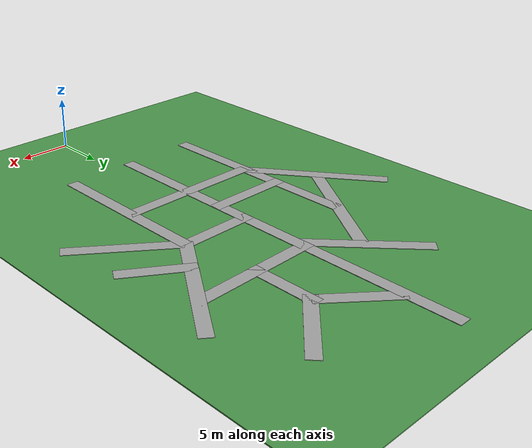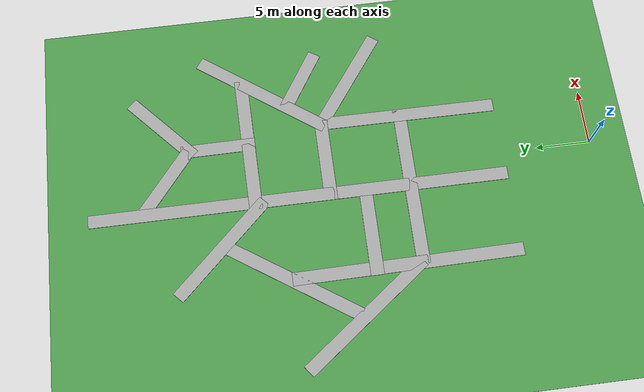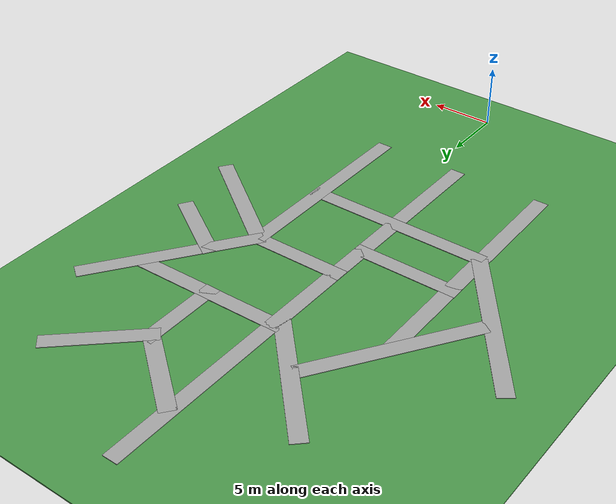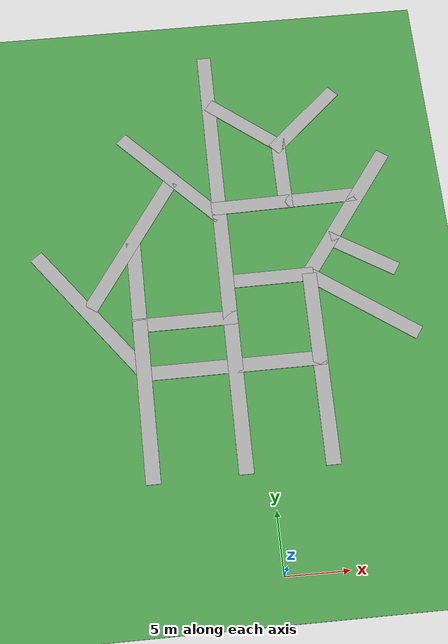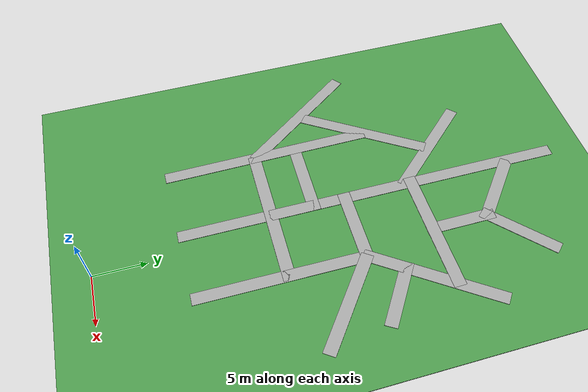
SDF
<?xml version="1.0" ?>
<sdf version="1.8">
  <world name="campus_sidewalk">

    <!-- 1. SIMULATION PHYSICS & SYSTEM PLUGINS     -->
    <physics name="1ms" type="ignored">
      <max_step_size>0.001</max_step_size>
      <real_time_factor>1.0</real_time_factor>
    </physics>

    <plugin filename="ignition-gazebo-physics-system" name="ignition::gazebo::systems::Physics"/>
    <plugin filename="ignition-gazebo-user-commands-system" name="ignition::gazebo::systems::UserCommands"/>
    <plugin filename="ignition-gazebo-scene-broadcaster-system" name="ignition::gazebo::systems::SceneBroadcaster"/>
    <plugin filename="ignition-gazebo-sensors-system" name="ignition::gazebo::systems::Sensors">
      <render_engine>ogre2</render_engine>
    </plugin>

    <!-- 2. LIGHTING & SUN                          -->
    <light type="directional" name="sun">
      <cast_shadows>true</cast_shadows>
      <pose>0 0 10 0 0 0</pose>
      <diffuse>0.8 0.8 0.8 1</diffuse>
      <specular>0.2 0.2 0.2 1</specular>
      <attenuation>
        <range>1000</range>
        <constant>0.9</constant>
        <linear>0.01</linear>
        <quadratic>0.001</quadratic>
      </attenuation>
      <direction>-0.5 0.1 -0.9</direction>
    </light>

    <!-- 3. GRASS MODEL                             -->
    <model name="grass_network">
      <static>true</static>

      <link name="grass_patch_0">
        <pose>-23.0000 1.0000 0.0 0 0 0</pose>
        <collision name="col">
          <pose>0 0 -0.0500 0 0 0</pose>
          <geometry>
            <box><size>220.0000 144.0000 0.1000</size></box>
          </geometry>
        </collision>
        <visual name="vis">
          <pose>0 0 -0.0500 0 0 0</pose>
          <geometry>
            <box><size>220.0000 144.0000 0.1000</size></box>
          </geometry>
          <material>
            <ambient>0.3 0.6 0.3 1</ambient>
            <diffuse>0.3 0.6 0.3 1</diffuse>
          </material>
          <plugin filename="ignition-gazebo-label-system" name="ignition::gazebo::systems::Label">
            <label>2</label> <!-- 2 = Grass -->
          </plugin>
        </visual>
      </link>
    </model>

    <!-- 4. SIDEWALK NETWORK                        -->
    <model name="sidewalk_network">
      <static>true</static>

      <!-- Segment 0: Length 38.00m, Width 1.20m, Height 0.05m -->
      <link name="segment_0">
        <pose>-2.0000 46.0000 0.0 0 0 -1.5708</pose>
        <collision name="col">
          <pose>19.0000 0 0.0250 0 0 0</pose>
          <geometry>
            <box><size>38.0000 1.2000 0.0500</size></box>
          </geometry>
        </collision>
        <visual name="vis">
          <pose>19.0000 0 0.0250 0 0 0</pose>
          <geometry>
            <box><size>38.0000 1.2000 0.0500</size></box>
          </geometry>
          <material>
            <ambient>0.65 0.65 0.65 1</ambient>
            <diffuse>0.65 0.65 0.65 1</diffuse>
          </material>
          <plugin filename="ignition-gazebo-label-system" name="ignition::gazebo::systems::Label">
            <label>1</label> <!-- 1 = Sidewalk -->
          </plugin>
        </visual>
      </link>

      <!-- Segment 1: Length 14.80m, Width 1.20m, Height 0.05m -->
      <link name="segment_1">
        <pose>-9.4733 16.8634 0.0 0 0 0.0049</pose>
        <collision name="col">
          <pose>7.3986 0 0.0250 0 0 0</pose>
          <geometry>
            <box><size>14.7973 1.2000 0.0500</size></box>
          </geometry>
        </collision>
        <visual name="vis">
          <pose>7.3986 0 0.0250 0 0 0</pose>
          <geometry>
            <box><size>14.7973 1.2000 0.0500</size></box>
          </geometry>
          <material>
            <ambient>0.65 0.65 0.65 1</ambient>
            <diffuse>0.65 0.65 0.65 1</diffuse>
          </material>
          <plugin filename="ignition-gazebo-label-system" name="ignition::gazebo::systems::Label">
            <label>1</label> <!-- 1 = Sidewalk -->
          </plugin>
        </visual>
      </link>

      <!-- Segment 2: Length 20.59m, Width 1.20m, Height 0.05m -->
      <link name="segment_2">
        <pose>-9.4583 28.4686 0.0 0 0 -1.5595</pose>
        <collision name="col">
          <pose>10.2934 0 0.0250 0 0 0</pose>
          <geometry>
            <box><size>20.5869 1.2000 0.0500</size></box>
          </geometry>
        </collision>
        <visual name="vis">
          <pose>10.2934 0 0.0250 0 0 0</pose>
          <geometry>
            <box><size>20.5869 1.2000 0.0500</size></box>
          </geometry>
          <material>
            <ambient>0.65 0.65 0.65 1</ambient>
            <diffuse>0.65 0.65 0.65 1</diffuse>
          </material>
          <plugin filename="ignition-gazebo-label-system" name="ignition::gazebo::systems::Label">
            <label>1</label> <!-- 1 = Sidewalk -->
          </plugin>
        </visual>
      </link>

      <!-- Segment 3: Length 13.27m, Width 1.20m, Height 0.05m -->
      <link name="segment_3">
        <pose>-5.8855 33.8859 0.0 0 0 -2.1614</pose>
        <collision name="col">
          <pose>6.6360 0 0.0250 0 0 0</pose>
          <geometry>
            <box><size>13.2720 1.2000 0.0500</size></box>
          </geometry>
        </collision>
        <visual name="vis">
          <pose>6.6360 0 0.0250 0 0 0</pose>
          <geometry>
            <box><size>13.2720 1.2000 0.0500</size></box>
          </geometry>
          <material>
            <ambient>0.65 0.65 0.65 1</ambient>
            <diffuse>0.65 0.65 0.65 1</diffuse>
          </material>
          <plugin filename="ignition-gazebo-label-system" name="ignition::gazebo::systems::Label">
            <label>1</label> <!-- 1 = Sidewalk -->
          </plugin>
        </visual>
      </link>

      <!-- Segment 4: Length 11.48m, Width 1.20m, Height 0.05m -->
      <link name="segment_4">
        <pose>-9.8744 38.4734 0.0 0 0 -0.8103</pose>
        <collision name="col">
          <pose>5.7421 0 0.0250 0 0 0</pose>
          <geometry>
            <box><size>11.4843 1.2000 0.0500</size></box>
          </geometry>
        </collision>
        <visual name="vis">
          <pose>5.7421 0 0.0250 0 0 0</pose>
          <geometry>
            <box><size>11.4843 1.2000 0.0500</size></box>
          </geometry>
          <material>
            <ambient>0.65 0.65 0.65 1</ambient>
            <diffuse>0.65 0.65 0.65 1</diffuse>
          </material>
          <plugin filename="ignition-gazebo-label-system" name="ignition::gazebo::systems::Label">
            <label>1</label> <!-- 1 = Sidewalk -->
          </plugin>
        </visual>
      </link>

      <!-- Segment 5: Length 7.81m, Width 1.20m, Height 0.05m -->
      <link name="segment_5">
        <pose>5.2231 24.2755 0.0 0 0 -3.1324</pose>
        <collision name="col">
          <pose>3.9038 0 0.0250 0 0 0</pose>
          <geometry>
            <box><size>7.8076 1.2000 0.0500</size></box>
          </geometry>
        </collision>
        <visual name="vis">
          <pose>3.9038 0 0.0250 0 0 0</pose>
          <geometry>
            <box><size>7.8076 1.2000 0.0500</size></box>
          </geometry>
          <material>
            <ambient>0.65 0.65 0.65 1</ambient>
            <diffuse>0.65 0.65 0.65 1</diffuse>
          </material>
          <plugin filename="ignition-gazebo-label-system" name="ignition::gazebo::systems::Label">
            <label>1</label> <!-- 1 = Sidewalk -->
          </plugin>
        </visual>
      </link>

      <!-- Segment 6: Length 12.77m, Width 1.20m, Height 0.05m -->
      <link name="segment_6">
        <pose>10.1311 31.2710 0.0 0 0 -3.1197</pose>
        <collision name="col">
          <pose>6.3873 0 0.0250 0 0 0</pose>
          <geometry>
            <box><size>12.7746 1.2000 0.0500</size></box>
          </geometry>
        </collision>
        <visual name="vis">
          <pose>6.3873 0 0.0250 0 0 0</pose>
          <geometry>
            <box><size>12.7746 1.2000 0.0500</size></box>
          </geometry>
          <material>
            <ambient>0.65 0.65 0.65 1</ambient>
            <diffuse>0.65 0.65 0.65 1</diffuse>
          </material>
          <plugin filename="ignition-gazebo-label-system" name="ignition::gazebo::systems::Label">
            <label>1</label> <!-- 1 = Sidewalk -->
          </plugin>
        </visual>
      </link>

      <!-- Segment 7: Length 13.57m, Width 1.20m, Height 0.05m -->
      <link name="segment_7">
        <pose>4.6177 23.9430 0.0 0 0 0.9474</pose>
        <collision name="col">
          <pose>6.7853 0 0.0250 0 0 0</pose>
          <geometry>
            <box><size>13.5706 1.2000 0.0500</size></box>
          </geometry>
        </collision>
        <visual name="vis">
          <pose>6.7853 0 0.0250 0 0 0</pose>
          <geometry>
            <box><size>13.5706 1.2000 0.0500</size></box>
          </geometry>
          <material>
            <ambient>0.65 0.65 0.65 1</ambient>
            <diffuse>0.65 0.65 0.65 1</diffuse>
          </material>
          <plugin filename="ignition-gazebo-label-system" name="ignition::gazebo::systems::Label">
            <label>1</label> <!-- 1 = Sidewalk -->
          </plugin>
        </visual>
      </link>

      <!-- Segment 8: Length 10.40m, Width 1.20m, Height 0.05m -->
      <link name="segment_8">
        <pose>4.6875 24.3618 0.0 0 0 -0.6234</pose>
        <collision name="col">
          <pose>5.2004 0 0.0250 0 0 0</pose>
          <geometry>
            <box><size>10.4008 1.2000 0.0500</size></box>
          </geometry>
        </collision>
        <visual name="vis">
          <pose>5.2004 0 0.0250 0 0 0</pose>
          <geometry>
            <box><size>10.4008 1.2000 0.0500</size></box>
          </geometry>
          <material>
            <ambient>0.65 0.65 0.65 1</ambient>
            <diffuse>0.65 0.65 0.65 1</diffuse>
          </material>
          <plugin filename="ignition-gazebo-label-system" name="ignition::gazebo::systems::Label">
            <label>1</label> <!-- 1 = Sidewalk -->
          </plugin>
        </visual>
      </link>

      <!-- Segment 9: Length 6.81m, Width 1.20m, Height 0.05m -->
      <link name="segment_9">
        <pose>3.6766 30.5096 0.0 0 0 1.5754</pose>
        <collision name="col">
          <pose>3.4039 0 0.0250 0 0 0</pose>
          <geometry>
            <box><size>6.8078 1.2000 0.0500</size></box>
          </geometry>
        </collision>
        <visual name="vis">
          <pose>3.4039 0 0.0250 0 0 0</pose>
          <geometry>
            <box><size>6.8078 1.2000 0.0500</size></box>
          </geometry>
          <material>
            <ambient>0.65 0.65 0.65 1</ambient>
            <diffuse>0.65 0.65 0.65 1</diffuse>
          </material>
          <plugin filename="ignition-gazebo-label-system" name="ignition::gazebo::systems::Label">
            <label>1</label> <!-- 1 = Sidewalk -->
          </plugin>
        </visual>
      </link>

      <!-- Segment 10: Length 16.21m, Width 1.20m, Height 0.05m -->
      <link name="segment_10">
        <pose>4.8731 24.3350 0.0 0 0 -1.5750</pose>
        <collision name="col">
          <pose>8.1037 0 0.0250 0 0 0</pose>
          <geometry>
            <box><size>16.2073 1.2000 0.0500</size></box>
          </geometry>
        </collision>
        <visual name="vis">
          <pose>8.1037 0 0.0250 0 0 0</pose>
          <geometry>
            <box><size>16.2073 1.2000 0.0500</size></box>
          </geometry>
          <material>
            <ambient>0.65 0.65 0.65 1</ambient>
            <diffuse>0.65 0.65 0.65 1</diffuse>
          </material>
          <plugin filename="ignition-gazebo-label-system" name="ignition::gazebo::systems::Label">
            <label>1</label> <!-- 1 = Sidewalk -->
          </plugin>
        </visual>
      </link>

      <!-- Segment 11: Length 7.24m, Width 1.20m, Height 0.05m -->
      <link name="segment_11">
        <pose>-2.0017 41.1488 0.0 0 0 -0.6724</pose>
        <collision name="col">
          <pose>3.6219 0 0.0250 0 0 0</pose>
          <geometry>
            <box><size>7.2438 1.2000 0.0500</size></box>
          </geometry>
        </collision>
        <visual name="vis">
          <pose>3.6219 0 0.0250 0 0 0</pose>
          <geometry>
            <box><size>7.2438 1.2000 0.0500</size></box>
          </geometry>
          <material>
            <ambient>0.65 0.65 0.65 1</ambient>
            <diffuse>0.65 0.65 0.65 1</diffuse>
          </material>
          <plugin filename="ignition-gazebo-label-system" name="ignition::gazebo::systems::Label">
            <label>1</label> <!-- 1 = Sidewalk -->
          </plugin>
        </visual>
      </link>

      <!-- Segment 12: Length 7.93m, Width 1.20m, Height 0.05m -->
      <link name="segment_12">
        <pose>3.2306 36.2021 0.0 0 0 0.7413</pose>
        <collision name="col">
          <pose>3.9672 0 0.0250 0 0 0</pose>
          <geometry>
            <box><size>7.9343 1.2000 0.0500</size></box>
          </geometry>
        </collision>
        <visual name="vis">
          <pose>3.9672 0 0.0250 0 0 0</pose>
          <geometry>
            <box><size>7.9343 1.2000 0.0500</size></box>
          </geometry>
          <material>
            <ambient>0.65 0.65 0.65 1</ambient>
            <diffuse>0.65 0.65 0.65 1</diffuse>
          </material>
          <plugin filename="ignition-gazebo-label-system" name="ignition::gazebo::systems::Label">
            <label>1</label> <!-- 1 = Sidewalk -->
          </plugin>
        </visual>
      </link>

      <!-- Segment 13: Length 13.93m, Width 1.20m, Height 0.05m -->
      <link name="segment_13">
        <pose>-17.5806 27.9487 0.0 0 0 -0.9214</pose>
        <collision name="col">
          <pose>6.9636 0 0.0250 0 0 0</pose>
          <geometry>
            <box><size>13.9272 1.2000 0.0500</size></box>
          </geometry>
        </collision>
        <visual name="vis">
          <pose>6.9636 0 0.0250 0 0 0</pose>
          <geometry>
            <box><size>13.9272 1.2000 0.0500</size></box>
          </geometry>
          <material>
            <ambient>0.65 0.65 0.65 1</ambient>
            <diffuse>0.65 0.65 0.65 1</diffuse>
          </material>
          <plugin filename="ignition-gazebo-label-system" name="ignition::gazebo::systems::Label">
            <label>1</label> <!-- 1 = Sidewalk -->
          </plugin>
        </visual>
      </link>

      <!-- Segment 14: Length 8.58m, Width 1.20m, Height 0.05m -->
      <link name="segment_14">
        <pose>-1.4116 21.0540 0.0 0 0 -3.1380</pose>
        <collision name="col">
          <pose>4.2905 0 0.0250 0 0 0</pose>
          <geometry>
            <box><size>8.5810 1.2000 0.0500</size></box>
          </geometry>
        </collision>
        <visual name="vis">
          <pose>4.2905 0 0.0250 0 0 0</pose>
          <geometry>
            <box><size>8.5810 1.2000 0.0500</size></box>
          </geometry>
          <material>
            <ambient>0.65 0.65 0.65 1</ambient>
            <diffuse>0.65 0.65 0.65 1</diffuse>
          </material>
          <plugin filename="ignition-gazebo-label-system" name="ignition::gazebo::systems::Label">
            <label>1</label> <!-- 1 = Sidewalk -->
          </plugin>
        </visual>
      </link>

      <!-- Segment 15: Length 6.66m, Width 1.20m, Height 0.05m -->
      <link name="segment_15">
        <pose>6.5067 27.5877 0.0 0 0 -0.5592</pose>
        <collision name="col">
          <pose>3.3313 0 0.0250 0 0 0</pose>
          <geometry>
            <box><size>6.6626 1.2000 0.0500</size></box>
          </geometry>
        </collision>
        <visual name="vis">
          <pose>3.3313 0 0.0250 0 0 0</pose>
          <geometry>
            <box><size>6.6626 1.2000 0.0500</size></box>
          </geometry>
          <material>
            <ambient>0.65 0.65 0.65 1</ambient>
            <diffuse>0.65 0.65 0.65 1</diffuse>
          </material>
          <plugin filename="ignition-gazebo-label-system" name="ignition::gazebo::systems::Label">
            <label>1</label> <!-- 1 = Sidewalk -->
          </plugin>
        </visual>
      </link>
    </model>

    <!-- 5. PREDEFINED SPAWN POINTS                 -->
    <!-- Waypoint: waypoint_1 -->
    <frame name="waypoint_1">
      <pose>-2.0001 11.0000 0.1000 0.0000 0.0000 1.5292</pose>
    </frame>

    <!-- Waypoint: waypoint_2 -->
    <frame name="waypoint_2">
      <pose>-9.2832 12.9696 0.1000 0.0000 0.0000 1.5714</pose>
    </frame>

    <!-- Waypoint: waypoint_3 -->
    <frame name="waypoint_3">
      <pose>8.7470 21.4428 0.1000 0.0000 0.0000 2.5712</pose>
    </frame>

    <!-- Waypoint: waypoint_4 -->
    <frame name="waypoint_4">
      <pose>11.3314 33.2799 0.1000 0.0000 0.0000 -2.1317</pose>
    </frame>

    <!-- Waypoint: waypoint_5 -->
    <frame name="waypoint_5">
      <pose>7.2874 39.9160 0.1000 0.0000 0.0000 -2.3641</pose>
    </frame>

    <!-- Waypoint: waypoint_6 -->
    <frame name="waypoint_6">
      <pose>-7.8066 36.2999 0.1000 0.0000 0.0000 -0.8103</pose>
    </frame>

    <!-- Waypoint: waypoint_7 -->
    <frame name="waypoint_7">
      <pose>-15.4641 25.1611 0.1000 0.0000 0.0000 -0.9929</pose>
    </frame>

    <!-- Waypoint: waypoint_8 -->
    <frame name="waypoint_8">
      <pose>-2.0000 44.0000 0.1000 0.0000 0.0000 -1.5708</pose>
    </frame>

  </world>
</sdf>
